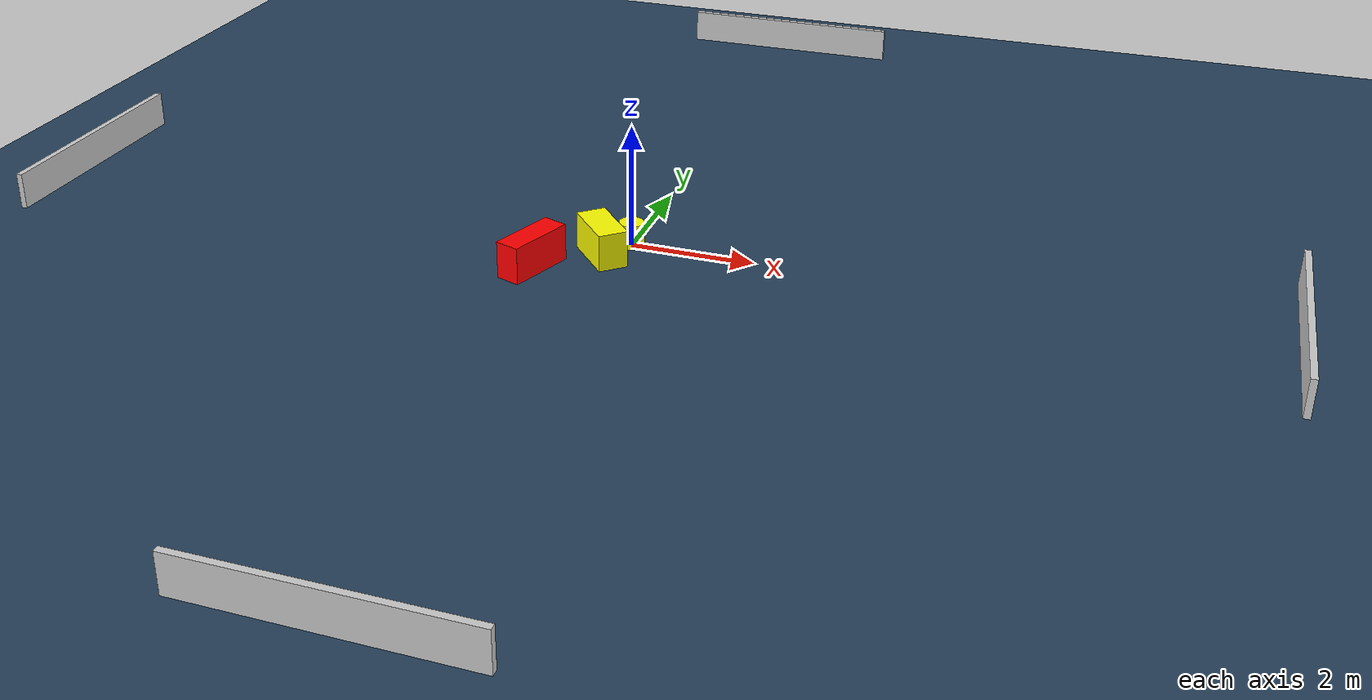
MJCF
<?xml version="1.0" ?>
<mujoco model="generated_environment">
  <option timestep="0.01" integrator="RK4" cone="elliptic"/>
  <default>
    <geom density="1"/>
  </default>
  <asset>
    <texture builtin="gradient" height="3072" name="skybox" rgb1="0.3 0.5 0.7" rgb2="0 0 0" type="skybox" width="512"/>
    <texture builtin="checker" height="300" name="groundplane" rgb1="0.2 0.3 0.4" rgb2="0.1 0.2 0.3" type="2d" width="300"/>
    <material name="groundplane" reflectance="0.2" texrepeat="5 5" texture="groundplane"/>
  </asset>
  <worldbody>
    <light dir="0 0 -1" directional="true" pos="0 0 1.5"/>
    <geom condim="3" friction="0.5 0.005 0.001" material="groundplane" name="floor" pos="0 0 0" size="0 0 0.05" type="plane"/>
    <body name="walls">
      <geom name="wall_1" condim="4" pos="-10.0 0.0 0.3" rgba="0.800000011920929 0.800000011920929 0.800000011920929 1.0" size="0.05 2.0 0.3" type="box"/>
      <geom name="wall_2" condim="4" pos="10.0 0.0 0.3" rgba="0.800000011920929 0.800000011920929 0.800000011920929 1.0" size="0.05 2.0 0.3" type="box"/>
      <geom name="wall_3" condim="4" pos="0.0 -10.0 0.3" rgba="0.800000011920929 0.800000011920929 0.800000011920929 1.0" size="2.0 0.05 0.3" type="box"/>
      <geom name="wall_4" condim="4" pos="0.0 10.0 0.3" rgba="0.800000011920929 0.800000011920929 0.800000011920929 1.0" size="2.0 0.05 0.3" type="box"/>
    </body>
    <body name="robot">
      <joint name="joint_x" type="slide" pos="0 0 0" axis="1 0 0"/>
      <joint name="joint_y" type="slide" pos="0 0 0" axis="0 1 0"/>
      <geom name="robot" type="cylinder" pos="0.0 0.0 0.2" size="0.2 0.2 0.0" mass="5.0" friction="1.0 0.005 0.0001" condim="4" rgba="1.0 1.0 0.0 1.0"/>
    </body>
    <body name="obstacle_1_movable">
      <geom name="obstacle_1_movable" condim="4" pos="-0.29699804305852834 -0.554409268514837 0.3" euler="0 0 311.8752824964796" friction="0.0 0.005 0.001" rgba="1.0 1.0 0.0 1.0" size="0.4726125655829003 0.23824608914265077 0.3" type="box" mass="0.1"/>
      <joint type="free"/>
    </body>
    <body name="obstacle_2_static">
      <geom name="obstacle_2_static" condim="4" pos="-1.1773222285190055 -1.2809395884462043 0.3" euler="0 0 160.69175976024536" friction="0.0 0.005 0.001" rgba="1.0 0.0 0.0 1.0" size="0.20356097221652716 0.5611657653631806 0.3" type="box"/>
    </body>
  </worldbody>
  <actuator>
    <motor name="actuator_x" joint="joint_x" gear="1" ctrlrange="-1 1"/>
    <motor name="actuator_y" joint="joint_y" gear="1" ctrlrange="-1 1"/>
  </actuator>
</mujoco>
